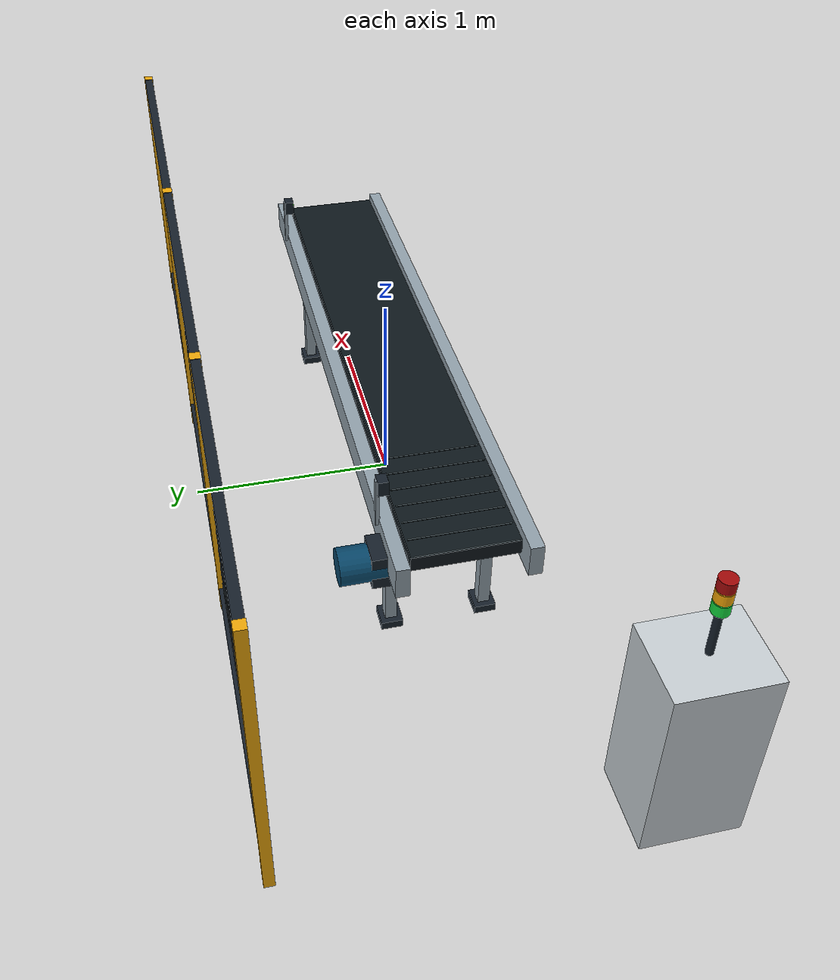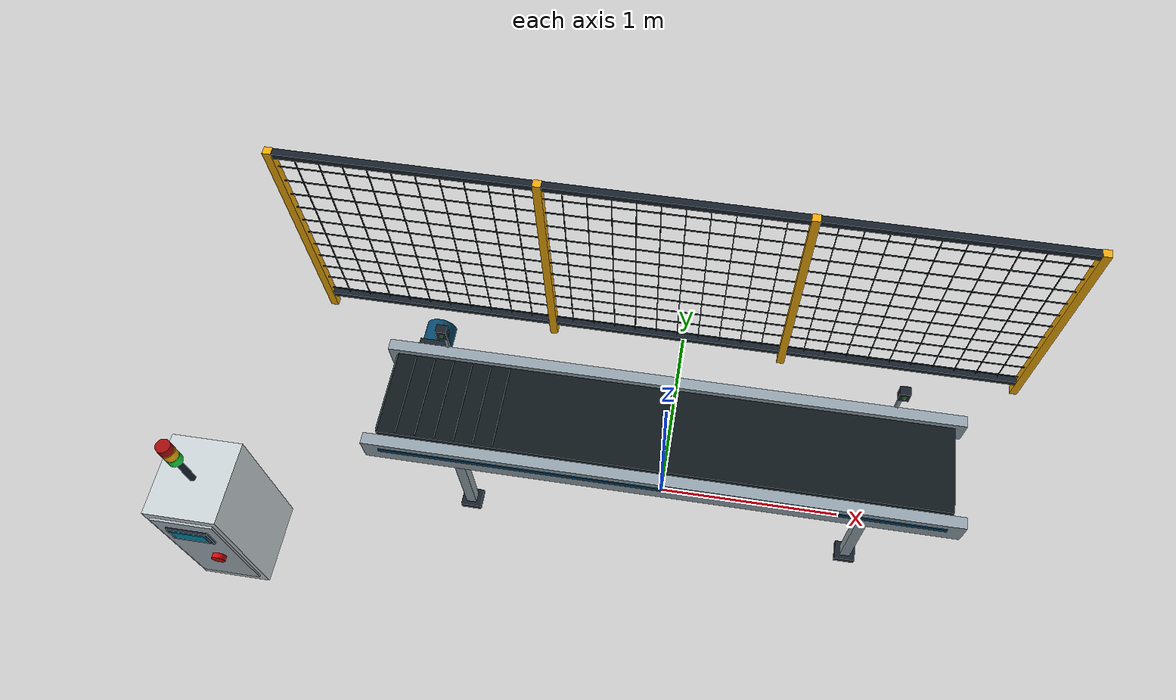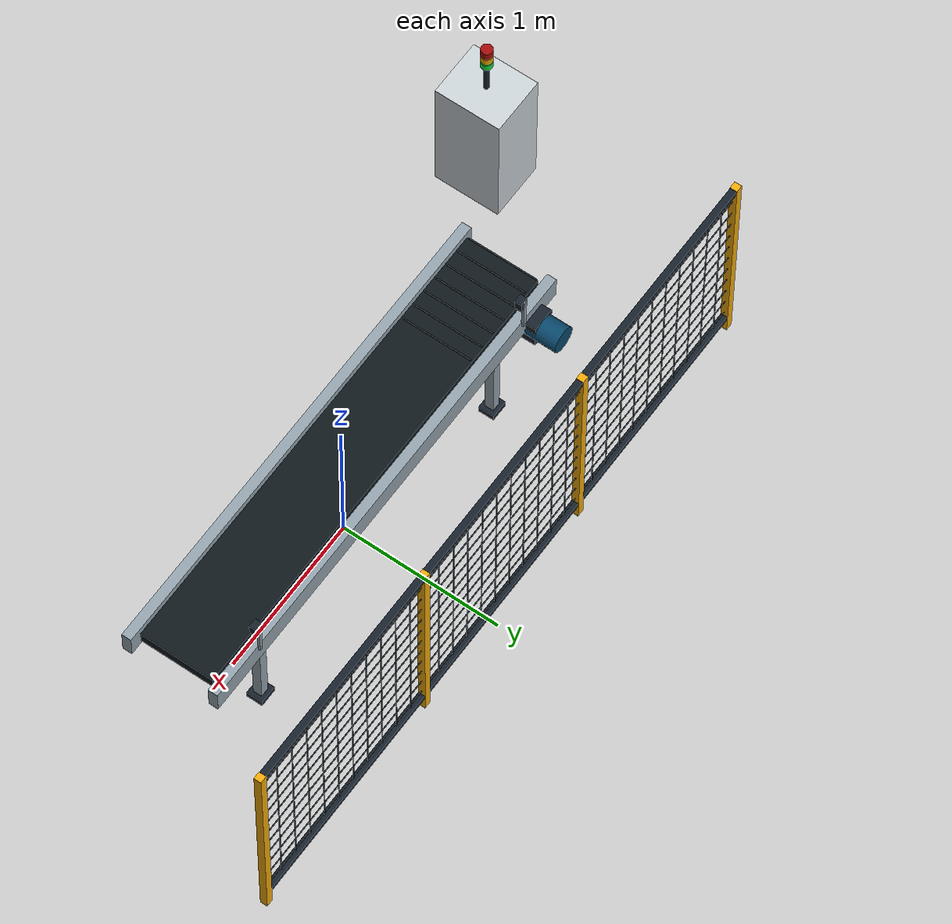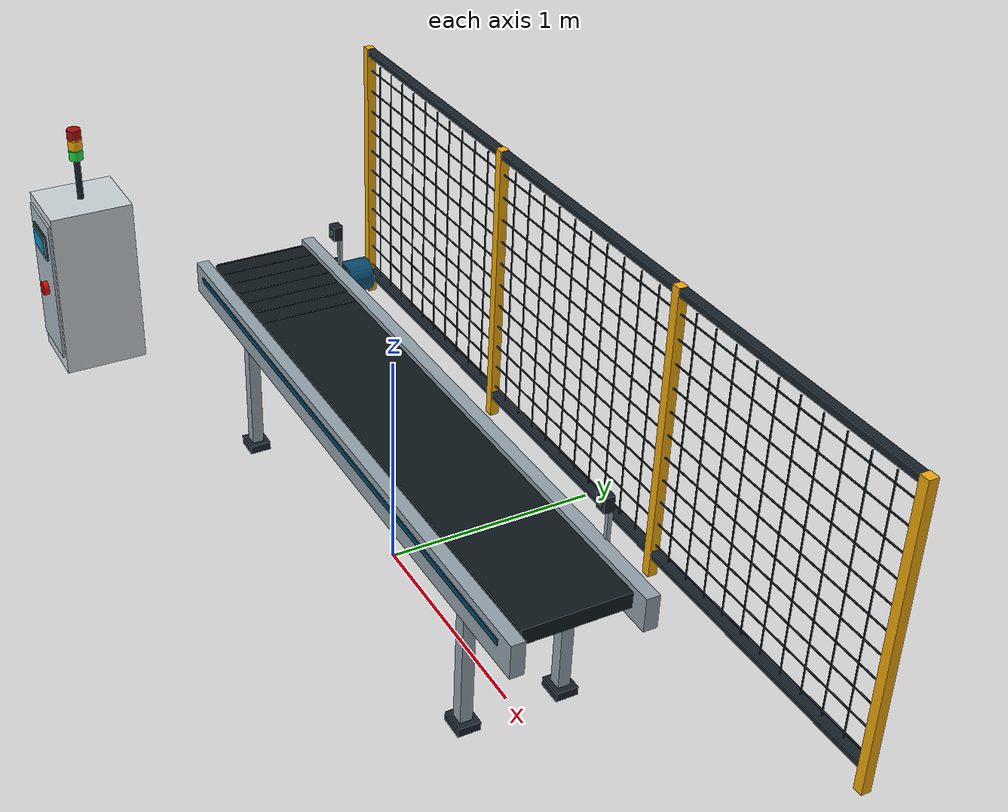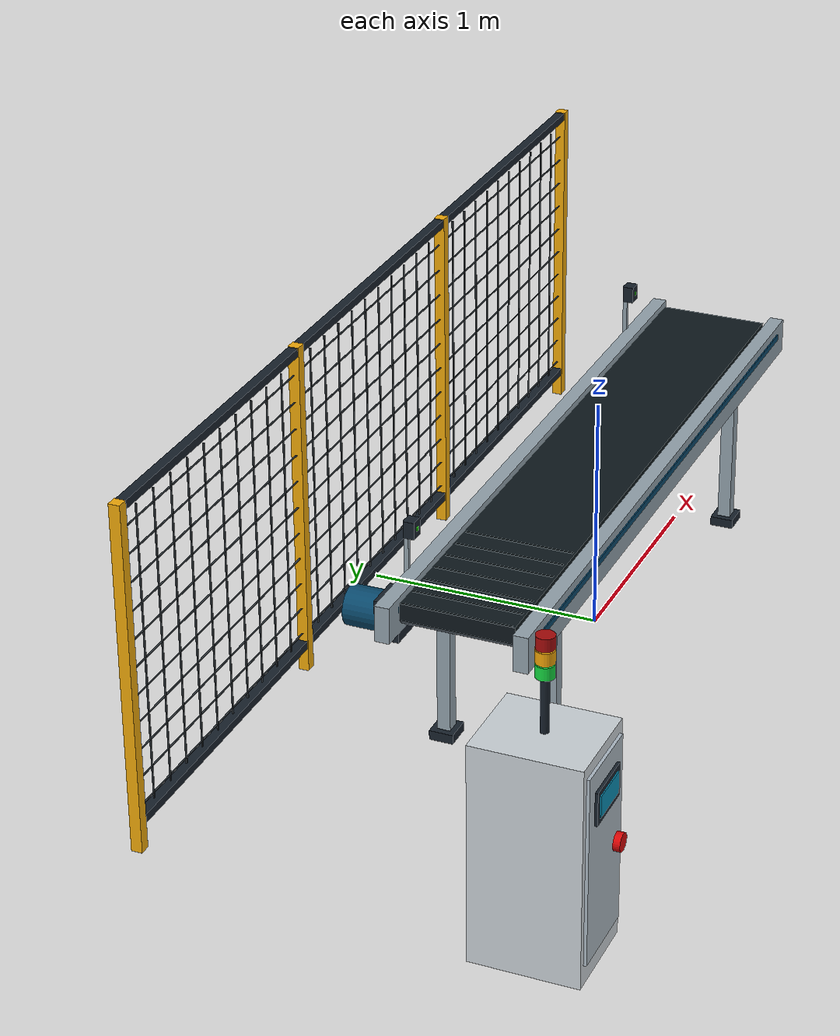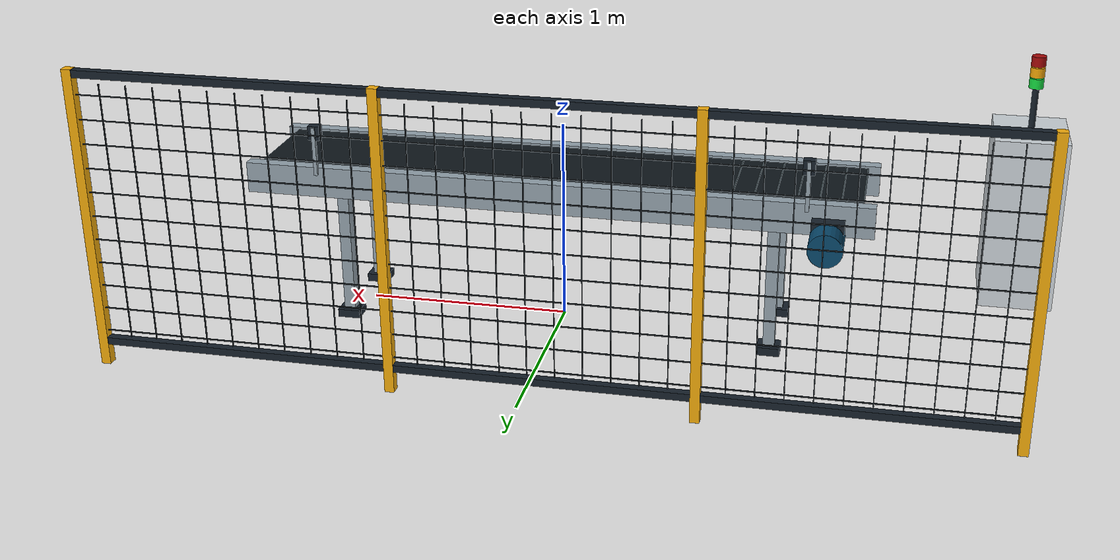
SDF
<sdf version="1.9">
 <world name="celda">
  <model name="transportador">
   <static>true</static>
   <link name="body">
    <visual name="belt">
     <pose>0 0 .765 0 0 0</pose>
     <geometry><box><size>2.9 .46 .07</size></box></geometry>
     <material>
      <ambient>.055 .09 .11 1</ambient>
      <diffuse>.055 .09 .11 1</diffuse>
      <specular>.25 .25 .25 1</specular>
     </material>
    </visual>
    <collision name="belt">
     <pose>0 0 .765 0 0 0</pose>
     <geometry><box><size>2.9 .46 .07</size></box></geometry>
    </collision>
    <visual name="rail-0.275">
     <pose>0 -0.275 .73 0 0 0</pose>
     <geometry><box><size>3.02 .06 .15</size></box></geometry>
     <material>
      <ambient>.58 .64 .68 1</ambient>
      <diffuse>.58 .64 .68 1</diffuse>
      <specular>.25 .25 .25 1</specular>
     </material>
    </visual>
    <visual name="stripe-0.275">
     <pose>0 -0.30700000000000005 .755 0 0 0</pose>
     <geometry><box><size>2.85 .006 .026</size></box></geometry>
     <material>
      <ambient>.03 .28 .42 1</ambient>
      <diffuse>.03 .28 .42 1</diffuse>
      <specular>.25 .25 .25 1</specular>
     </material>
    </visual>
    <visual name="rail0.275">
     <pose>0 0.275 .73 0 0 0</pose>
     <geometry><box><size>3.02 .06 .15</size></box></geometry>
     <material>
      <ambient>.58 .64 .68 1</ambient>
      <diffuse>.58 .64 .68 1</diffuse>
      <specular>.25 .25 .25 1</specular>
     </material>
    </visual>
    <visual name="stripe0.275">
     <pose>0 0.24300000000000002 .755 0 0 0</pose>
     <geometry><box><size>2.85 .006 .026</size></box></geometry>
     <material>
      <ambient>.03 .28 .42 1</ambient>
      <diffuse>.03 .28 .42 1</diffuse>
      <specular>.25 .25 .25 1</specular>
     </material>
    </visual>
    <visual name="leg-1.05-0.22">
     <pose>-1.05 -0.22 .35 0 0 0</pose>
     <geometry><box><size>.055 .055 .70</size></box></geometry>
     <material>
      <ambient>.58 .64 .68 1</ambient>
      <diffuse>.58 .64 .68 1</diffuse>
      <specular>.25 .25 .25 1</specular>
     </material>
    </visual>
    <collision name="leg-1.05-0.22">
     <pose>-1.05 -0.22 .35 0 0 0</pose>
     <geometry><box><size>.055 .055 .70</size></box></geometry>
    </collision>
    <visual name="pad-1.05-0.22">
     <pose>-1.05 -0.22 .02 0 0 0</pose>
     <geometry><box><size>.11 .10 .04</size></box></geometry>
     <material>
      <ambient>.09 .13 .17 1</ambient>
      <diffuse>.09 .13 .17 1</diffuse>
      <specular>.25 .25 .25 1</specular>
     </material>
    </visual>
    <visual name="leg-1.050.22">
     <pose>-1.05 0.22 .35 0 0 0</pose>
     <geometry><box><size>.055 .055 .70</size></box></geometry>
     <material>
      <ambient>.58 .64 .68 1</ambient>
      <diffuse>.58 .64 .68 1</diffuse>
      <specular>.25 .25 .25 1</specular>
     </material>
    </visual>
    <collision name="leg-1.050.22">
     <pose>-1.05 0.22 .35 0 0 0</pose>
     <geometry><box><size>.055 .055 .70</size></box></geometry>
    </collision>
    <visual name="pad-1.050.22">
     <pose>-1.05 0.22 .02 0 0 0</pose>
     <geometry><box><size>.11 .10 .04</size></box></geometry>
     <material>
      <ambient>.09 .13 .17 1</ambient>
      <diffuse>.09 .13 .17 1</diffuse>
      <specular>.25 .25 .25 1</specular>
     </material>
    </visual>
    <visual name="leg1.05-0.22">
     <pose>1.05 -0.22 .35 0 0 0</pose>
     <geometry><box><size>.055 .055 .70</size></box></geometry>
     <material>
      <ambient>.58 .64 .68 1</ambient>
      <diffuse>.58 .64 .68 1</diffuse>
      <specular>.25 .25 .25 1</specular>
     </material>
    </visual>
    <collision name="leg1.05-0.22">
     <pose>1.05 -0.22 .35 0 0 0</pose>
     <geometry><box><size>.055 .055 .70</size></box></geometry>
    </collision>
    <visual name="pad1.05-0.22">
     <pose>1.05 -0.22 .02 0 0 0</pose>
     <geometry><box><size>.11 .10 .04</size></box></geometry>
     <material>
      <ambient>.09 .13 .17 1</ambient>
      <diffuse>.09 .13 .17 1</diffuse>
      <specular>.25 .25 .25 1</specular>
     </material>
    </visual>
    <visual name="leg1.050.22">
     <pose>1.05 0.22 .35 0 0 0</pose>
     <geometry><box><size>.055 .055 .70</size></box></geometry>
     <material>
      <ambient>.58 .64 .68 1</ambient>
      <diffuse>.58 .64 .68 1</diffuse>
      <specular>.25 .25 .25 1</specular>
     </material>
    </visual>
    <collision name="leg1.050.22">
     <pose>1.05 0.22 .35 0 0 0</pose>
     <geometry><box><size>.055 .055 .70</size></box></geometry>
    </collision>
    <visual name="pad1.050.22">
     <pose>1.05 0.22 .02 0 0 0</pose>
     <geometry><box><size>.11 .10 .04</size></box></geometry>
     <material>
      <ambient>.09 .13 .17 1</ambient>
      <diffuse>.09 .13 .17 1</diffuse>
      <specular>.25 .25 .25 1</specular>
     </material>
    </visual>
    <visual name="roller0">
     <pose>-1.38 0 .72 1.5708 0 0</pose>
     <geometry><cylinder><radius>.038</radius><length>.52</length></cylinder></geometry>
     <material>
      <ambient>.36 .41 .45 1</ambient>
      <diffuse>.36 .41 .45 1</diffuse>
      <specular>.25 .25 .25 1</specular>
     </material>
    </visual>
    <visual name="roller1">
     <pose>-1.2349999999999999 0 .72 1.5708 0 0</pose>
     <geometry><cylinder><radius>.038</radius><length>.52</length></cylinder></geometry>
     <material>
      <ambient>.36 .41 .45 1</ambient>
      <diffuse>.36 .41 .45 1</diffuse>
      <specular>.25 .25 .25 1</specular>
     </material>
    </visual>
    <visual name="roller2">
     <pose>-1.0899999999999999 0 .72 1.5708 0 0</pose>
     <geometry><cylinder><radius>.038</radius><length>.52</length></cylinder></geometry>
     <material>
      <ambient>.36 .41 .45 1</ambient>
      <diffuse>.36 .41 .45 1</diffuse>
      <specular>.25 .25 .25 1</specular>
     </material>
    </visual>
    <visual name="roller3">
     <pose>-0.945 0 .72 1.5708 0 0</pose>
     <geometry><cylinder><radius>.038</radius><length>.52</length></cylinder></geometry>
     <material>
      <ambient>.36 .41 .45 1</ambient>
      <diffuse>.36 .41 .45 1</diffuse>
      <specular>.25 .25 .25 1</specular>
     </material>
    </visual>
    <visual name="roller4">
     <pose>-0.7999999999999999 0 .72 1.5708 0 0</pose>
     <geometry><cylinder><radius>.038</radius><length>.52</length></cylinder></geometry>
     <material>
      <ambient>.36 .41 .45 1</ambient>
      <diffuse>.36 .41 .45 1</diffuse>
      <specular>.25 .25 .25 1</specular>
     </material>
    </visual>
    <visual name="roller5">
     <pose>-0.6549999999999999 0 .72 1.5708 0 0</pose>
     <geometry><cylinder><radius>.038</radius><length>.52</length></cylinder></geometry>
     <material>
      <ambient>.36 .41 .45 1</ambient>
      <diffuse>.36 .41 .45 1</diffuse>
      <specular>.25 .25 .25 1</specular>
     </material>
    </visual>
    <visual name="roller6">
     <pose>-0.51 0 .72 1.5708 0 0</pose>
     <geometry><cylinder><radius>.038</radius><length>.52</length></cylinder></geometry>
     <material>
      <ambient>.36 .41 .45 1</ambient>
      <diffuse>.36 .41 .45 1</diffuse>
      <specular>.25 .25 .25 1</specular>
     </material>
    </visual>
    <visual name="roller7">
     <pose>-0.365 0 .72 1.5708 0 0</pose>
     <geometry><cylinder><radius>.038</radius><length>.52</length></cylinder></geometry>
     <material>
      <ambient>.36 .41 .45 1</ambient>
      <diffuse>.36 .41 .45 1</diffuse>
      <specular>.25 .25 .25 1</specular>
     </material>
    </visual>
    <visual name="roller8">
     <pose>-0.21999999999999997 0 .72 1.5708 0 0</pose>
     <geometry><cylinder><radius>.038</radius><length>.52</length></cylinder></geometry>
     <material>
      <ambient>.36 .41 .45 1</ambient>
      <diffuse>.36 .41 .45 1</diffuse>
      <specular>.25 .25 .25 1</specular>
     </material>
    </visual>
    <visual name="roller9">
     <pose>-0.07499999999999996 0 .72 1.5708 0 0</pose>
     <geometry><cylinder><radius>.038</radius><length>.52</length></cylinder></geometry>
     <material>
      <ambient>.36 .41 .45 1</ambient>
      <diffuse>.36 .41 .45 1</diffuse>
      <specular>.25 .25 .25 1</specular>
     </material>
    </visual>
    <visual name="roller10">
     <pose>0.07000000000000006 0 .72 1.5708 0 0</pose>
     <geometry><cylinder><radius>.038</radius><length>.52</length></cylinder></geometry>
     <material>
      <ambient>.36 .41 .45 1</ambient>
      <diffuse>.36 .41 .45 1</diffuse>
      <specular>.25 .25 .25 1</specular>
     </material>
    </visual>
    <visual name="roller11">
     <pose>0.21500000000000008 0 .72 1.5708 0 0</pose>
     <geometry><cylinder><radius>.038</radius><length>.52</length></cylinder></geometry>
     <material>
      <ambient>.36 .41 .45 1</ambient>
      <diffuse>.36 .41 .45 1</diffuse>
      <specular>.25 .25 .25 1</specular>
     </material>
    </visual>
    <visual name="roller12">
     <pose>0.3599999999999999 0 .72 1.5708 0 0</pose>
     <geometry><cylinder><radius>.038</radius><length>.52</length></cylinder></geometry>
     <material>
      <ambient>.36 .41 .45 1</ambient>
      <diffuse>.36 .41 .45 1</diffuse>
      <specular>.25 .25 .25 1</specular>
     </material>
    </visual>
    <visual name="roller13">
     <pose>0.5049999999999999 0 .72 1.5708 0 0</pose>
     <geometry><cylinder><radius>.038</radius><length>.52</length></cylinder></geometry>
     <material>
      <ambient>.36 .41 .45 1</ambient>
      <diffuse>.36 .41 .45 1</diffuse>
      <specular>.25 .25 .25 1</specular>
     </material>
    </visual>
    <visual name="roller14">
     <pose>0.6499999999999999 0 .72 1.5708 0 0</pose>
     <geometry><cylinder><radius>.038</radius><length>.52</length></cylinder></geometry>
     <material>
      <ambient>.36 .41 .45 1</ambient>
      <diffuse>.36 .41 .45 1</diffuse>
      <specular>.25 .25 .25 1</specular>
     </material>
    </visual>
    <visual name="roller15">
     <pose>0.7949999999999999 0 .72 1.5708 0 0</pose>
     <geometry><cylinder><radius>.038</radius><length>.52</length></cylinder></geometry>
     <material>
      <ambient>.36 .41 .45 1</ambient>
      <diffuse>.36 .41 .45 1</diffuse>
      <specular>.25 .25 .25 1</specular>
     </material>
    </visual>
    <visual name="roller16">
     <pose>0.94 0 .72 1.5708 0 0</pose>
     <geometry><cylinder><radius>.038</radius><length>.52</length></cylinder></geometry>
     <material>
      <ambient>.36 .41 .45 1</ambient>
      <diffuse>.36 .41 .45 1</diffuse>
      <specular>.25 .25 .25 1</specular>
     </material>
    </visual>
    <visual name="roller17">
     <pose>1.085 0 .72 1.5708 0 0</pose>
     <geometry><cylinder><radius>.038</radius><length>.52</length></cylinder></geometry>
     <material>
      <ambient>.36 .41 .45 1</ambient>
      <diffuse>.36 .41 .45 1</diffuse>
      <specular>.25 .25 .25 1</specular>
     </material>
    </visual>
    <visual name="roller18">
     <pose>1.23 0 .72 1.5708 0 0</pose>
     <geometry><cylinder><radius>.038</radius><length>.52</length></cylinder></geometry>
     <material>
      <ambient>.36 .41 .45 1</ambient>
      <diffuse>.36 .41 .45 1</diffuse>
      <specular>.25 .25 .25 1</specular>
     </material>
    </visual>
    <visual name="roller19">
     <pose>1.375 0 .72 1.5708 0 0</pose>
     <geometry><cylinder><radius>.038</radius><length>.52</length></cylinder></geometry>
     <material>
      <ambient>.36 .41 .45 1</ambient>
      <diffuse>.36 .41 .45 1</diffuse>
      <specular>.25 .25 .25 1</specular>
     </material>
    </visual>
    <visual name="motor">
     <pose>-1.3 .40 .66 1.5708 0 0</pose>
     <geometry><cylinder><radius>.08</radius><length>.20</length></cylinder></geometry>
     <material>
      <ambient>.03 .28 .42 1</ambient>
      <diffuse>.03 .28 .42 1</diffuse>
      <specular>.25 .25 .25 1</specular>
     </material>
    </visual>
    <visual name="gearbox">
     <pose>-1.3 .32 .66 0 0 0</pose>
     <geometry><box><size>.15 .10 .16</size></box></geometry>
     <material>
      <ambient>.09 .13 .17 1</ambient>
      <diffuse>.09 .13 .17 1</diffuse>
      <specular>.25 .25 .25 1</specular>
     </material>
    </visual>
    <visual name="sensorpost0">
     <pose>-1.2 .31 .89 0 0 0</pose>
     <geometry><box><size>.018 .018 .24</size></box></geometry>
     <material>
      <ambient>.58 .64 .68 1</ambient>
      <diffuse>.58 .64 .68 1</diffuse>
      <specular>.25 .25 .25 1</specular>
     </material>
    </visual>
    <visual name="sensor0">
     <pose>-1.2 .29 .98 0 0 0</pose>
     <geometry><box><size>.055 .045 .07</size></box></geometry>
     <material>
      <ambient>.09 .13 .17 1</ambient>
      <diffuse>.09 .13 .17 1</diffuse>
      <specular>.25 .25 .25 1</specular>
     </material>
    </visual>
    <visual name="sensorLED0">
     <pose>-1.2 .265 .98 0 0 0</pose>
     <geometry><box><size>.014 .004 .014</size></box></geometry>
     <material>
      <ambient>.2 1 .1 1</ambient>
      <diffuse>.2 1 .1 1</diffuse>
      <specular>.25 .25 .25 1</specular>
     </material>
    </visual>
    <visual name="sensorpost1">
     <pose>1.15 .31 .89 0 0 0</pose>
     <geometry><box><size>.018 .018 .24</size></box></geometry>
     <material>
      <ambient>.58 .64 .68 1</ambient>
      <diffuse>.58 .64 .68 1</diffuse>
      <specular>.25 .25 .25 1</specular>
     </material>
    </visual>
    <visual name="sensor1">
     <pose>1.15 .29 .98 0 0 0</pose>
     <geometry><box><size>.055 .045 .07</size></box></geometry>
     <material>
      <ambient>.09 .13 .17 1</ambient>
      <diffuse>.09 .13 .17 1</diffuse>
      <specular>.25 .25 .25 1</specular>
     </material>
    </visual>
    <visual name="sensorLED1">
     <pose>1.15 .265 .98 0 0 0</pose>
     <geometry><box><size>.014 .004 .014</size></box></geometry>
     <material>
      <ambient>.2 1 .1 1</ambient>
      <diffuse>.2 1 .1 1</diffuse>
      <specular>.25 .25 .25 1</specular>
     </material>
    </visual>
   </link>
  </model>
  <model name="belt_marks">
   <static>true</static>
   <link name="mark_0">
    <pose>-1.45 0 .803 0 0 0</pose>
    <visual name="line">
     <geometry><box><size>.008 .44 .002</size></box></geometry>
     <material>
      <ambient>.22 .27 .29 1</ambient>
      <diffuse>.22 .27 .29 1</diffuse>
      <specular>.25 .25 .25 1</specular>
     </material>
    </visual>
   </link>
   <link name="mark_1">
    <pose>-1.3499999999999999 0 .803 0 0 0</pose>
    <visual name="line">
     <geometry><box><size>.008 .44 .002</size></box></geometry>
     <material>
      <ambient>.22 .27 .29 1</ambient>
      <diffuse>.22 .27 .29 1</diffuse>
      <specular>.25 .25 .25 1</specular>
     </material>
    </visual>
   </link>
   <link name="mark_2">
    <pose>-1.25 0 .803 0 0 0</pose>
    <visual name="line">
     <geometry><box><size>.008 .44 .002</size></box></geometry>
     <material>
      <ambient>.22 .27 .29 1</ambient>
      <diffuse>.22 .27 .29 1</diffuse>
      <specular>.25 .25 .25 1</specular>
     </material>
    </visual>
   </link>
   <link name="mark_3">
    <pose>-1.15 0 .803 0 0 0</pose>
    <visual name="line">
     <geometry><box><size>.008 .44 .002</size></box></geometry>
     <material>
      <ambient>.22 .27 .29 1</ambient>
      <diffuse>.22 .27 .29 1</diffuse>
      <specular>.25 .25 .25 1</specular>
     </material>
    </visual>
   </link>
   <link name="mark_4">
    <pose>-1.0499999999999998 0 .803 0 0 0</pose>
    <visual name="line">
     <geometry><box><size>.008 .44 .002</size></box></geometry>
     <material>
      <ambient>.22 .27 .29 1</ambient>
      <diffuse>.22 .27 .29 1</diffuse>
      <specular>.25 .25 .25 1</specular>
     </material>
    </visual>
   </link>
   <link name="mark_5">
    <pose>-0.95 0 .803 0 0 0</pose>
    <visual name="line">
     <geometry><box><size>.008 .44 .002</size></box></geometry>
     <material>
      <ambient>.22 .27 .29 1</ambient>
      <diffuse>.22 .27 .29 1</diffuse>
      <specular>.25 .25 .25 1</specular>
     </material>
    </visual>
   </link>
   <link name="mark_6">
    <pose>-0.8499999999999999 0 .803 0 0 0</pose>
    <visual name="line">
     <geometry><box><size>.008 .44 .002</size></box></geometry>
     <material>
      <ambient>.22 .27 .29 1</ambient>
      <diffuse>.22 .27 .29 1</diffuse>
      <specular>.25 .25 .25 1</specular>
     </material>
    </visual>
   </link>
  </model>
  <model name="vallado">
   <static>true</static>
   <link name="body">
    <visual name="post0">
     <pose>-2.2 .95 .72 0 0 0</pose>
     <geometry><box><size>.045 .045 1.44</size></box></geometry>
     <material>
      <ambient>.95 .67 .04 1</ambient>
      <diffuse>.95 .67 .04 1</diffuse>
      <specular>.25 .25 .25 1</specular>
     </material>
    </visual>
    <visual name="post1">
     <pose>-0.8 .95 .72 0 0 0</pose>
     <geometry><box><size>.045 .045 1.44</size></box></geometry>
     <material>
      <ambient>.95 .67 .04 1</ambient>
      <diffuse>.95 .67 .04 1</diffuse>
      <specular>.25 .25 .25 1</specular>
     </material>
    </visual>
    <visual name="post2">
     <pose>0.6 .95 .72 0 0 0</pose>
     <geometry><box><size>.045 .045 1.44</size></box></geometry>
     <material>
      <ambient>.95 .67 .04 1</ambient>
      <diffuse>.95 .67 .04 1</diffuse>
      <specular>.25 .25 .25 1</specular>
     </material>
    </visual>
    <visual name="post3">
     <pose>2.0 .95 .72 0 0 0</pose>
     <geometry><box><size>.045 .045 1.44</size></box></geometry>
     <material>
      <ambient>.95 .67 .04 1</ambient>
      <diffuse>.95 .67 .04 1</diffuse>
      <specular>.25 .25 .25 1</specular>
     </material>
    </visual>
    <visual name="meshV0">
     <pose>-2.2 .95 .76 0 0 0</pose>
     <geometry><box><size>.004 .006 1.23</size></box></geometry>
     <material>
      <ambient>.19 .22 .24 1</ambient>
      <diffuse>.19 .22 .24 1</diffuse>
      <specular>.25 .25 .25 1</specular>
     </material>
    </visual>
    <visual name="meshV1">
     <pose>-2.0730000000000004 .95 .76 0 0 0</pose>
     <geometry><box><size>.004 .006 1.23</size></box></geometry>
     <material>
      <ambient>.19 .22 .24 1</ambient>
      <diffuse>.19 .22 .24 1</diffuse>
      <specular>.25 .25 .25 1</specular>
     </material>
    </visual>
    <visual name="meshV2">
     <pose>-1.9460000000000002 .95 .76 0 0 0</pose>
     <geometry><box><size>.004 .006 1.23</size></box></geometry>
     <material>
      <ambient>.19 .22 .24 1</ambient>
      <diffuse>.19 .22 .24 1</diffuse>
      <specular>.25 .25 .25 1</specular>
     </material>
    </visual>
    <visual name="meshV3">
     <pose>-1.8190000000000002 .95 .76 0 0 0</pose>
     <geometry><box><size>.004 .006 1.23</size></box></geometry>
     <material>
      <ambient>.19 .22 .24 1</ambient>
      <diffuse>.19 .22 .24 1</diffuse>
      <specular>.25 .25 .25 1</specular>
     </material>
    </visual>
    <visual name="meshV4">
     <pose>-1.6920000000000002 .95 .76 0 0 0</pose>
     <geometry><box><size>.004 .006 1.23</size></box></geometry>
     <material>
      <ambient>.19 .22 .24 1</ambient>
      <diffuse>.19 .22 .24 1</diffuse>
      <specular>.25 .25 .25 1</specular>
     </material>
    </visual>
    <visual name="meshV5">
     <pose>-1.5650000000000002 .95 .76 0 0 0</pose>
     <geometry><box><size>.004 .006 1.23</size></box></geometry>
     <material>
      <ambient>.19 .22 .24 1</ambient>
      <diffuse>.19 .22 .24 1</diffuse>
      <specular>.25 .25 .25 1</specular>
     </material>
    </visual>
    <visual name="meshV6">
     <pose>-1.4380000000000002 .95 .76 0 0 0</pose>
     <geometry><box><size>.004 .006 1.23</size></box></geometry>
     <material>
      <ambient>.19 .22 .24 1</ambient>
      <diffuse>.19 .22 .24 1</diffuse>
      <specular>.25 .25 .25 1</specular>
     </material>
    </visual>
    <visual name="meshV7">
     <pose>-1.3110000000000002 .95 .76 0 0 0</pose>
     <geometry><box><size>.004 .006 1.23</size></box></geometry>
     <material>
      <ambient>.19 .22 .24 1</ambient>
      <diffuse>.19 .22 .24 1</diffuse>
      <specular>.25 .25 .25 1</specular>
     </material>
    </visual>
    <visual name="meshV8">
     <pose>-1.1840000000000002 .95 .76 0 0 0</pose>
     <geometry><box><size>.004 .006 1.23</size></box></geometry>
     <material>
      <ambient>.19 .22 .24 1</ambient>
      <diffuse>.19 .22 .24 1</diffuse>
      <specular>.25 .25 .25 1</specular>
     </material>
    </visual>
    <visual name="meshV9">
     <pose>-1.0570000000000002 .95 .76 0 0 0</pose>
     <geometry><box><size>.004 .006 1.23</size></box></geometry>
     <material>
      <ambient>.19 .22 .24 1</ambient>
      <diffuse>.19 .22 .24 1</diffuse>
      <specular>.25 .25 .25 1</specular>
     </material>
    </visual>
    <visual name="meshV10">
     <pose>-0.9300000000000002 .95 .76 0 0 0</pose>
     <geometry><box><size>.004 .006 1.23</size></box></geometry>
     <material>
      <ambient>.19 .22 .24 1</ambient>
      <diffuse>.19 .22 .24 1</diffuse>
      <specular>.25 .25 .25 1</specular>
     </material>
    </visual>
    <visual name="meshV11">
     <pose>-0.8030000000000002 .95 .76 0 0 0</pose>
     <geometry><box><size>.004 .006 1.23</size></box></geometry>
     <material>
      <ambient>.19 .22 .24 1</ambient>
      <diffuse>.19 .22 .24 1</diffuse>
      <specular>.25 .25 .25 1</specular>
     </material>
    </visual>
    <visual name="meshV12">
     <pose>-0.6760000000000002 .95 .76 0 0 0</pose>
     <geometry><box><size>.004 .006 1.23</size></box></geometry>
     <material>
      <ambient>.19 .22 .24 1</ambient>
      <diffuse>.19 .22 .24 1</diffuse>
      <specular>.25 .25 .25 1</specular>
     </material>
    </visual>
    <visual name="meshV13">
     <pose>-0.5490000000000002 .95 .76 0 0 0</pose>
     <geometry><box><size>.004 .006 1.23</size></box></geometry>
     <material>
      <ambient>.19 .22 .24 1</ambient>
      <diffuse>.19 .22 .24 1</diffuse>
      <specular>.25 .25 .25 1</specular>
     </material>
    </visual>
    <visual name="meshV14">
     <pose>-0.42200000000000015 .95 .76 0 0 0</pose>
     <geometry><box><size>.004 .006 1.23</size></box></geometry>
     <material>
      <ambient>.19 .22 .24 1</ambient>
      <diffuse>.19 .22 .24 1</diffuse>
      <specular>.25 .25 .25 1</specular>
     </material>
    </visual>
    <visual name="meshV15">
     <pose>-0.29500000000000015 .95 .76 0 0 0</pose>
     <geometry><box><size>.004 .006 1.23</size></box></geometry>
     <material>
      <ambient>.19 .22 .24 1</ambient>
      <diffuse>.19 .22 .24 1</diffuse>
      <specular>.25 .25 .25 1</specular>
     </material>
    </visual>
    <visual name="meshV16">
     <pose>-0.16800000000000015 .95 .76 0 0 0</pose>
     <geometry><box><size>.004 .006 1.23</size></box></geometry>
     <material>
      <ambient>.19 .22 .24 1</ambient>
      <diffuse>.19 .22 .24 1</diffuse>
      <specular>.25 .25 .25 1</specular>
     </material>
    </visual>
    <visual name="meshV17">
     <pose>-0.04100000000000037 .95 .76 0 0 0</pose>
     <geometry><box><size>.004 .006 1.23</size></box></geometry>
     <material>
      <ambient>.19 .22 .24 1</ambient>
      <diffuse>.19 .22 .24 1</diffuse>
      <specular>.25 .25 .25 1</specular>
     </material>
    </visual>
    <visual name="meshV18">
     <pose>0.08599999999999985 .95 .76 0 0 0</pose>
     <geometry><box><size>.004 .006 1.23</size></box></geometry>
     <material>
      <ambient>.19 .22 .24 1</ambient>
      <diffuse>.19 .22 .24 1</diffuse>
      <specular>.25 .25 .25 1</specular>
     </material>
    </visual>
    <visual name="meshV19">
     <pose>0.21300000000000008 .95 .76 0 0 0</pose>
     <geometry><box><size>.004 .006 1.23</size></box></geometry>
     <material>
      <ambient>.19 .22 .24 1</ambient>
      <diffuse>.19 .22 .24 1</diffuse>
      <specular>.25 .25 .25 1</specular>
     </material>
    </visual>
    <visual name="meshV20">
     <pose>0.33999999999999986 .95 .76 0 0 0</pose>
     <geometry><box><size>.004 .006 1.23</size></box></geometry>
     <material>
      <ambient>.19 .22 .24 1</ambient>
      <diffuse>.19 .22 .24 1</diffuse>
      <specular>.25 .25 .25 1</specular>
     </material>
    </visual>
    <visual name="meshV21">
     <pose>0.46699999999999964 .95 .76 0 0 0</pose>
     <geometry><box><size>.004 .006 1.23</size></box></geometry>
     <material>
      <ambient>.19 .22 .24 1</ambient>
      <diffuse>.19 .22 .24 1</diffuse>
      <specular>.25 .25 .25 1</specular>
     </material>
    </visual>
    <visual name="meshV22">
     <pose>0.5939999999999999 .95 .76 0 0 0</pose>
     <geometry><box><size>.004 .006 1.23</size></box></geometry>
     <material>
      <ambient>.19 .22 .24 1</ambient>
      <diffuse>.19 .22 .24 1</diffuse>
      <specular>.25 .25 .25 1</specular>
     </material>
    </visual>
    <visual name="meshV23">
     <pose>0.7210000000000001 .95 .76 0 0 0</pose>
     <geometry><box><size>.004 .006 1.23</size></box></geometry>
     <material>
      <ambient>.19 .22 .24 1</ambient>
      <diffuse>.19 .22 .24 1</diffuse>
      <specular>.25 .25 .25 1</specular>
     </material>
    </visual>
    <visual name="meshV24">
     <pose>0.8479999999999999 .95 .76 0 0 0</pose>
     <geometry><box><size>.004 .006 1.23</size></box></geometry>
     <material>
      <ambient>.19 .22 .24 1</ambient>
      <diffuse>.19 .22 .24 1</diffuse>
      <specular>.25 .25 .25 1</specular>
     </material>
    </visual>
    <visual name="meshV25">
     <pose>0.9749999999999996 .95 .76 0 0 0</pose>
     <geometry><box><size>.004 .006 1.23</size></box></geometry>
     <material>
      <ambient>.19 .22 .24 1</ambient>
      <diffuse>.19 .22 .24 1</diffuse>
      <specular>.25 .25 .25 1</specular>
     </material>
    </visual>
    <visual name="meshV26">
     <pose>1.1019999999999999 .95 .76 0 0 0</pose>
     <geometry><box><size>.004 .006 1.23</size></box></geometry>
     <material>
      <ambient>.19 .22 .24 1</ambient>
      <diffuse>.19 .22 .24 1</diffuse>
      <specular>.25 .25 .25 1</specular>
     </material>
    </visual>
    <visual name="meshV27">
     <pose>1.229 .95 .76 0 0 0</pose>
     <geometry><box><size>.004 .006 1.23</size></box></geometry>
     <material>
      <ambient>.19 .22 .24 1</ambient>
      <diffuse>.19 .22 .24 1</diffuse>
      <specular>.25 .25 .25 1</specular>
     </material>
    </visual>
    <visual name="meshV28">
     <pose>1.3559999999999999 .95 .76 0 0 0</pose>
     <geometry><box><size>.004 .006 1.23</size></box></geometry>
     <material>
      <ambient>.19 .22 .24 1</ambient>
      <diffuse>.19 .22 .24 1</diffuse>
      <specular>.25 .25 .25 1</specular>
     </material>
    </visual>
    <visual name="meshV29">
     <pose>1.4829999999999997 .95 .76 0 0 0</pose>
     <geometry><box><size>.004 .006 1.23</size></box></geometry>
     <material>
      <ambient>.19 .22 .24 1</ambient>
      <diffuse>.19 .22 .24 1</diffuse>
      <specular>.25 .25 .25 1</specular>
     </material>
    </visual>
    <visual name="meshV30">
     <pose>1.6099999999999999 .95 .76 0 0 0</pose>
     <geometry><box><size>.004 .006 1.23</size></box></geometry>
     <material>
      <ambient>.19 .22 .24 1</ambient>
      <diffuse>.19 .22 .24 1</diffuse>
      <specular>.25 .25 .25 1</specular>
     </material>
    </visual>
    <visual name="meshV31">
     <pose>1.737 .95 .76 0 0 0</pose>
     <geometry><box><size>.004 .006 1.23</size></box></geometry>
     <material>
      <ambient>.19 .22 .24 1</ambient>
      <diffuse>.19 .22 .24 1</diffuse>
      <specular>.25 .25 .25 1</specular>
     </material>
    </visual>
    <visual name="meshV32">
     <pose>1.8639999999999999 .95 .76 0 0 0</pose>
     <geometry><box><size>.004 .006 1.23</size></box></geometry>
     <material>
      <ambient>.19 .22 .24 1</ambient>
      <diffuse>.19 .22 .24 1</diffuse>
      <specular>.25 .25 .25 1</specular>
     </material>
    </visual>
    <visual name="meshV33">
     <pose>1.9909999999999997 .95 .76 0 0 0</pose>
     <geometry><box><size>.004 .006 1.23</size></box></geometry>
     <material>
      <ambient>.19 .22 .24 1</ambient>
      <diffuse>.19 .22 .24 1</diffuse>
      <specular>.25 .25 .25 1</specular>
     </material>
    </visual>
    <visual name="meshH0">
     <pose>-.1 .95 0.17 0 0 0</pose>
     <geometry><box><size>4.2 .006 .004</size></box></geometry>
     <material>
      <ambient>.19 .22 .24 1</ambient>
      <diffuse>.19 .22 .24 1</diffuse>
      <specular>.25 .25 .25 1</specular>
     </material>
    </visual>
    <visual name="meshH1">
     <pose>-.1 .95 0.28500000000000003 0 0 0</pose>
     <geometry><box><size>4.2 .006 .004</size></box></geometry>
     <material>
      <ambient>.19 .22 .24 1</ambient>
      <diffuse>.19 .22 .24 1</diffuse>
      <specular>.25 .25 .25 1</specular>
     </material>
    </visual>
    <visual name="meshH2">
     <pose>-.1 .95 0.4 0 0 0</pose>
     <geometry><box><size>4.2 .006 .004</size></box></geometry>
     <material>
      <ambient>.19 .22 .24 1</ambient>
      <diffuse>.19 .22 .24 1</diffuse>
      <specular>.25 .25 .25 1</specular>
     </material>
    </visual>
    <visual name="meshH3">
     <pose>-.1 .95 0.515 0 0 0</pose>
     <geometry><box><size>4.2 .006 .004</size></box></geometry>
     <material>
      <ambient>.19 .22 .24 1</ambient>
      <diffuse>.19 .22 .24 1</diffuse>
      <specular>.25 .25 .25 1</specular>
     </material>
    </visual>
    <visual name="meshH4">
     <pose>-.1 .95 0.63 0 0 0</pose>
     <geometry><box><size>4.2 .006 .004</size></box></geometry>
     <material>
      <ambient>.19 .22 .24 1</ambient>
      <diffuse>.19 .22 .24 1</diffuse>
      <specular>.25 .25 .25 1</specular>
     </material>
    </visual>
    <visual name="meshH5">
     <pose>-.1 .95 0.7450000000000001 0 0 0</pose>
     <geometry><box><size>4.2 .006 .004</size></box></geometry>
     <material>
      <ambient>.19 .22 .24 1</ambient>
      <diffuse>.19 .22 .24 1</diffuse>
      <specular>.25 .25 .25 1</specular>
     </material>
    </visual>
    <visual name="meshH6">
     <pose>-.1 .95 0.8600000000000001 0 0 0</pose>
     <geometry><box><size>4.2 .006 .004</size></box></geometry>
     <material>
      <ambient>.19 .22 .24 1</ambient>
      <diffuse>.19 .22 .24 1</diffuse>
      <specular>.25 .25 .25 1</specular>
     </material>
    </visual>
    <visual name="meshH7">
     <pose>-.1 .95 0.9750000000000001 0 0 0</pose>
     <geometry><box><size>4.2 .006 .004</size></box></geometry>
     <material>
      <ambient>.19 .22 .24 1</ambient>
      <diffuse>.19 .22 .24 1</diffuse>
      <specular>.25 .25 .25 1</specular>
     </material>
    </visual>
    <visual name="meshH8">
     <pose>-.1 .95 1.09 0 0 0</pose>
     <geometry><box><size>4.2 .006 .004</size></box></geometry>
     <material>
      <ambient>.19 .22 .24 1</ambient>
      <diffuse>.19 .22 .24 1</diffuse>
      <specular>.25 .25 .25 1</specular>
     </material>
    </visual>
    <visual name="meshH9">
     <pose>-.1 .95 1.205 0 0 0</pose>
     <geometry><box><size>4.2 .006 .004</size></box></geometry>
     <material>
      <ambient>.19 .22 .24 1</ambient>
      <diffuse>.19 .22 .24 1</diffuse>
      <specular>.25 .25 .25 1</specular>
     </material>
    </visual>
    <visual name="meshH10">
     <pose>-.1 .95 1.32 0 0 0</pose>
     <geometry><box><size>4.2 .006 .004</size></box></geometry>
     <material>
      <ambient>.19 .22 .24 1</ambient>
      <diffuse>.19 .22 .24 1</diffuse>
      <specular>.25 .25 .25 1</specular>
     </material>
    </visual>
    <visual name="bar0.12">
     <pose>-.1 .95 0.12 0 0 0</pose>
     <geometry><box><size>4.24 .04 .035</size></box></geometry>
     <material>
      <ambient>.09 .13 .17 1</ambient>
      <diffuse>.09 .13 .17 1</diffuse>
      <specular>.25 .25 .25 1</specular>
     </material>
    </visual>
    <visual name="bar1.42">
     <pose>-.1 .95 1.42 0 0 0</pose>
     <geometry><box><size>4.24 .04 .035</size></box></geometry>
     <material>
      <ambient>.09 .13 .17 1</ambient>
      <diffuse>.09 .13 .17 1</diffuse>
      <specular>.25 .25 .25 1</specular>
     </material>
    </visual>
   </link>
  </model>
  <model name="armario_control">
   <static>true</static>
   <link name="body">
    <visual name="cabinet">
     <pose>-2.22 -.65 .47 0 0 0</pose>
     <geometry><box><size>.36 .42 .88</size></box></geometry>
     <material>
      <ambient>.80 .83 .85 1</ambient>
      <diffuse>.80 .83 .85 1</diffuse>
      <specular>.25 .25 .25 1</specular>
     </material>
    </visual>
    <collision name="cabinet">
     <pose>-2.22 -.65 .47 0 0 0</pose>
     <geometry><box><size>.36 .42 .88</size></box></geometry>
    </collision>
    <visual name="door">
     <pose>-2.22 -.866 .49 0 0 0</pose>
     <geometry><box><size>.31 .012 .75</size></box></geometry>
     <material>
      <ambient>.68 .73 .77 1</ambient>
      <diffuse>.68 .73 .77 1</diffuse>
      <specular>.25 .25 .25 1</specular>
     </material>
    </visual>
    <visual name="screen">
     <pose>-2.22 -.877 .72 0 0 0</pose>
     <geometry><box><size>.21 .012 .13</size></box></geometry>
     <material>
      <ambient>.09 .13 .17 1</ambient>
      <diffuse>.09 .13 .17 1</diffuse>
      <specular>.25 .25 .25 1</specular>
     </material>
    </visual>
    <visual name="display">
     <pose>-2.22 -.885 .72 0 0 0</pose>
     <geometry><box><size>.17 .005 .085</size></box></geometry>
     <material>
      <ambient>.03 .56 .71 1</ambient>
      <diffuse>.03 .56 .71 1</diffuse>
      <specular>.25 .25 .25 1</specular>
     </material>
    </visual>
    <visual name="stop">
     <pose>-2.15 -.90 .49 1.5708 0 0</pose>
     <geometry><cylinder><radius>.035</radius><length>.026</length></cylinder></geometry>
     <material>
      <ambient>.85 .025 .025 1</ambient>
      <diffuse>.85 .025 .025 1</diffuse>
      <specular>.25 .25 .25 1</specular>
     </material>
    </visual>
    <visual name="stem">
     <pose>-2.22 -.65 1.02 0 0 0</pose>
     <geometry><cylinder><radius>.016</radius><length>.22</length></cylinder></geometry>
     <material>
      <ambient>.09 .13 .17 1</ambient>
      <diffuse>.09 .13 .17 1</diffuse>
      <specular>.25 .25 .25 1</specular>
     </material>
    </visual>
    <visual name="lamp0">
     <pose>-2.22 -.65 1.15 0 0 0</pose>
     <geometry><cylinder><radius>.035</radius><length>.05</length></cylinder></geometry>
     <material>
      <ambient>.08 .85 .25 1</ambient>
      <diffuse>.08 .85 .25 1</diffuse>
      <specular>.25 .25 .25 1</specular>
     </material>
    </visual>
    <visual name="lamp1">
     <pose>-2.22 -.65 1.2049999999999998 0 0 0</pose>
     <geometry><cylinder><radius>.035</radius><length>.05</length></cylinder></geometry>
     <material>
      <ambient>.95 .65 .03 1</ambient>
      <diffuse>.95 .65 .03 1</diffuse>
      <specular>.25 .25 .25 1</specular>
     </material>
    </visual>
    <visual name="lamp2">
     <pose>-2.22 -.65 1.26 0 0 0</pose>
     <geometry><cylinder><radius>.035</radius><length>.05</length></cylinder></geometry>
     <material>
      <ambient>.65 .04 .04 1</ambient>
      <diffuse>.65 .04 .04 1</diffuse>
      <specular>.25 .25 .25 1</specular>
     </material>
    </visual>
   </link>
  </model>
 </world>
</sdf>
